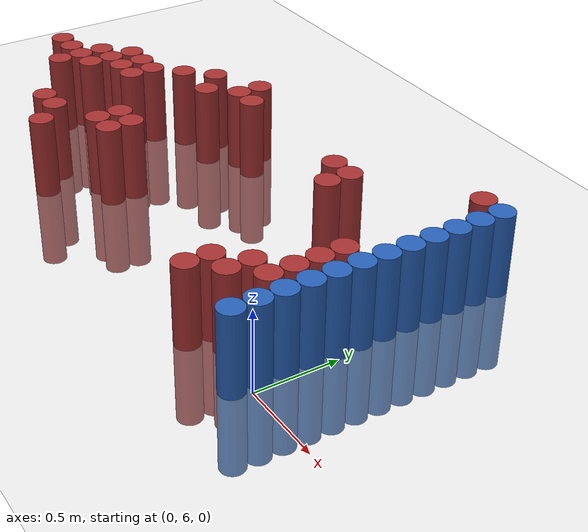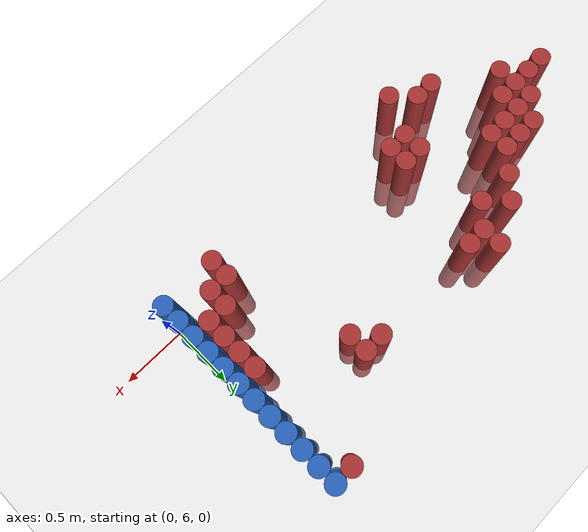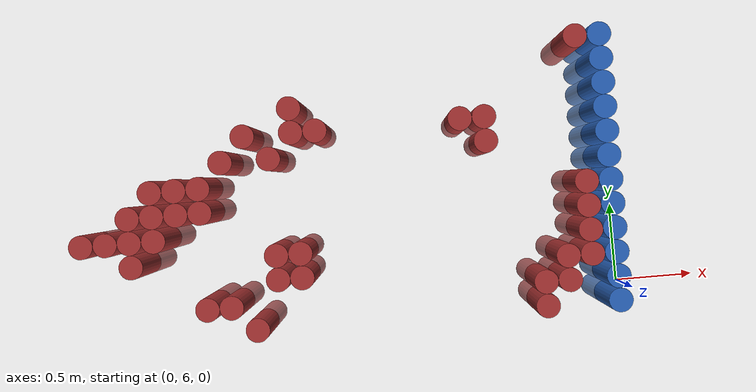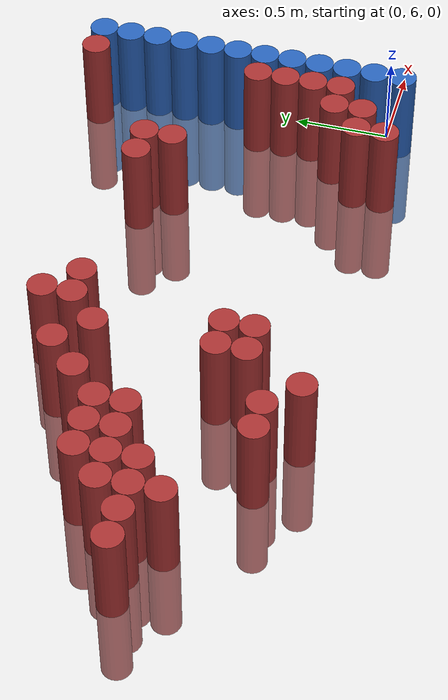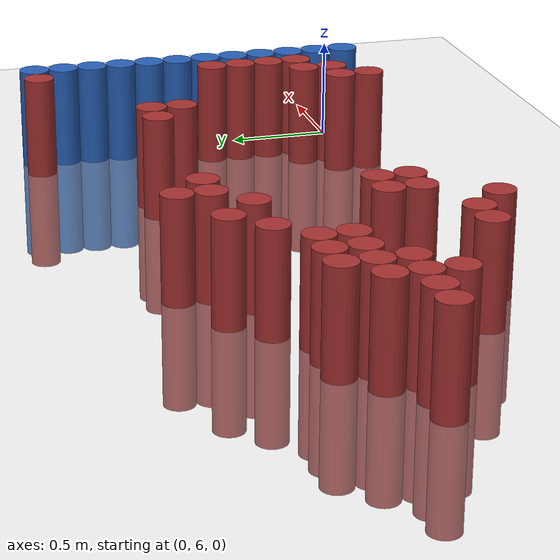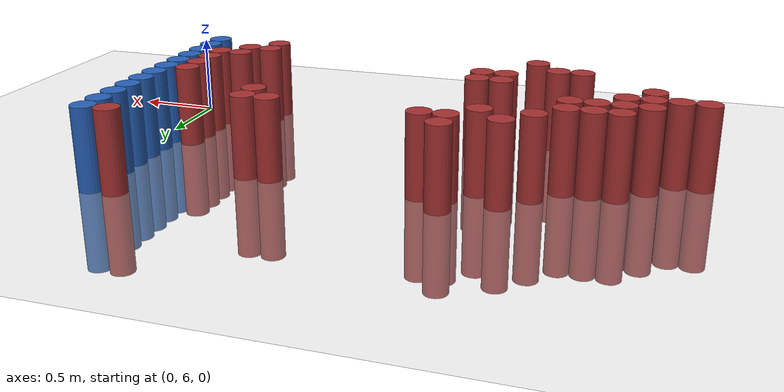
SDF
<sdf version="1.6">
 <world name="default">
  <model name="ground_plane">
   <static>1</static>
   <link name="link">
    <collision name="collision">
     <geometry><plane><normal>0 0 1</normal><size>100 100</size></plane></geometry>
     <surface><friction><ode><mu>100</mu><mu2>50</mu2></ode></friction></surface>
    </collision>
    <visual name="visual">
     <cast_shadows>0</cast_shadows>
     <geometry><plane><normal>0 0 1</normal><size>100 100</size></plane></geometry>
     <material>
      <script><uri>file://media/materials/scripts/gazebo.material</uri><name>Gazebo/Grey</name></script>
     </material>
    </visual>
   </link>
  </model>
  <model name="unit_cylinder_171">
   <static>1</static>
   <pose>-3.375000 6.525000 0.000000 0.000000 0.000000 0.000000</pose>
   <link name="link">
    <inertial>
     <mass>1</mass>
     <inertia><ixx>0.145833</ixx><ixy>0</ixy><ixz>0</ixz><iyy>0.145833</iyy><iyz>0</iyz><izz>0.125</izz></inertia>
    </inertial>
    <collision name="collision">
     <geometry><cylinder><radius>0.075000</radius><length>1</length></cylinder></geometry>
    </collision>
    <visual name="visual">
     <geometry><cylinder><radius>0.075000</radius><length>1</length></cylinder></geometry>
     <material>
      <ambient>0.648000 0.192000 0.192000 1</ambient>
      <diffuse>0.648000 0.192000 0.192000 1</diffuse>
     </material>
     <material>
      <script><name>Gazebo/Grey</name><uri>file://media/materials/scripts/gazebo.material</uri></script>
     </material>
    </visual>
   </link>
  </model>
  <model name="unit_cylinder_179">
   <static>1</static>
   <pose>-3.225000 6.525000 0.000000 0.000000 0.000000 0.000000</pose>
   <link name="link">
    <inertial>
     <mass>1</mass>
     <inertia><ixx>0.145833</ixx><ixy>0</ixy><ixz>0</ixz><iyy>0.145833</iyy><iyz>0</iyz><izz>0.125</izz></inertia>
    </inertial>
    <collision name="collision">
     <geometry><cylinder><radius>0.075000</radius><length>1</length></cylinder></geometry>
    </collision>
    <visual name="visual">
     <geometry><cylinder><radius>0.075000</radius><length>1</length></cylinder></geometry>
     <material>
      <ambient>0.648000 0.192000 0.192000 1</ambient>
      <diffuse>0.648000 0.192000 0.192000 1</diffuse>
     </material>
     <material>
      <script><name>Gazebo/Grey</name><uri>file://media/materials/scripts/gazebo.material</uri></script>
     </material>
    </visual>
   </link>
  </model>
  <model name="unit_cylinder_186">
   <static>1</static>
   <pose>-3.075000 6.375000 0.000000 0.000000 0.000000 0.000000</pose>
   <link name="link">
    <inertial>
     <mass>1</mass>
     <inertia><ixx>0.145833</ixx><ixy>0</ixy><ixz>0</ixz><iyy>0.145833</iyy><iyz>0</iyz><izz>0.125</izz></inertia>
    </inertial>
    <collision name="collision">
     <geometry><cylinder><radius>0.075000</radius><length>1</length></cylinder></geometry>
    </collision>
    <visual name="visual">
     <geometry><cylinder><radius>0.075000</radius><length>1</length></cylinder></geometry>
     <material>
      <ambient>0.648000 0.192000 0.192000 1</ambient>
      <diffuse>0.648000 0.192000 0.192000 1</diffuse>
     </material>
     <material>
      <script><name>Gazebo/Grey</name><uri>file://media/materials/scripts/gazebo.material</uri></script>
     </material>
    </visual>
   </link>
  </model>
  <model name="unit_cylinder_187">
   <static>1</static>
   <pose>-3.075000 6.525000 0.000000 0.000000 0.000000 0.000000</pose>
   <link name="link">
    <inertial>
     <mass>1</mass>
     <inertia><ixx>0.145833</ixx><ixy>0</ixy><ixz>0</ixz><iyy>0.145833</iyy><iyz>0</iyz><izz>0.125</izz></inertia>
    </inertial>
    <collision name="collision">
     <geometry><cylinder><radius>0.075000</radius><length>1</length></cylinder></geometry>
    </collision>
    <visual name="visual">
     <geometry><cylinder><radius>0.075000</radius><length>1</length></cylinder></geometry>
     <material>
      <ambient>0.648000 0.192000 0.192000 1</ambient>
      <diffuse>0.648000 0.192000 0.192000 1</diffuse>
     </material>
     <material>
      <script><name>Gazebo/Grey</name><uri>file://media/materials/scripts/gazebo.material</uri></script>
     </material>
    </visual>
   </link>
  </model>
  <model name="unit_cylinder_188">
   <static>1</static>
   <pose>-3.075000 6.675000 0.000000 0.000000 0.000000 0.000000</pose>
   <link name="link">
    <inertial>
     <mass>1</mass>
     <inertia><ixx>0.145833</ixx><ixy>0</ixy><ixz>0</ixz><iyy>0.145833</iyy><iyz>0</iyz><izz>0.125</izz></inertia>
    </inertial>
    <collision name="collision">
     <geometry><cylinder><radius>0.075000</radius><length>1</length></cylinder></geometry>
    </collision>
    <visual name="visual">
     <geometry><cylinder><radius>0.075000</radius><length>1</length></cylinder></geometry>
     <material>
      <ambient>0.648000 0.192000 0.192000 1</ambient>
      <diffuse>0.648000 0.192000 0.192000 1</diffuse>
     </material>
     <material>
      <script><name>Gazebo/Grey</name><uri>file://media/materials/scripts/gazebo.material</uri></script>
     </material>
    </visual>
   </link>
  </model>
  <model name="unit_cylinder_193">
   <static>1</static>
   <pose>-2.925000 6.525000 0.000000 0.000000 0.000000 0.000000</pose>
   <link name="link">
    <inertial>
     <mass>1</mass>
     <inertia><ixx>0.145833</ixx><ixy>0</ixy><ixz>0</ixz><iyy>0.145833</iyy><iyz>0</iyz><izz>0.125</izz></inertia>
    </inertial>
    <collision name="collision">
     <geometry><cylinder><radius>0.075000</radius><length>1</length></cylinder></geometry>
    </collision>
    <visual name="visual">
     <geometry><cylinder><radius>0.075000</radius><length>1</length></cylinder></geometry>
     <material>
      <ambient>0.648000 0.192000 0.192000 1</ambient>
      <diffuse>0.648000 0.192000 0.192000 1</diffuse>
     </material>
     <material>
      <script><name>Gazebo/Grey</name><uri>file://media/materials/scripts/gazebo.material</uri></script>
     </material>
    </visual>
   </link>
  </model>
  <model name="unit_cylinder_194">
   <static>1</static>
   <pose>-2.925000 6.675000 0.000000 0.000000 0.000000 0.000000</pose>
   <link name="link">
    <inertial>
     <mass>1</mass>
     <inertia><ixx>0.145833</ixx><ixy>0</ixy><ixz>0</ixz><iyy>0.145833</iyy><iyz>0</iyz><izz>0.125</izz></inertia>
    </inertial>
    <collision name="collision">
     <geometry><cylinder><radius>0.075000</radius><length>1</length></cylinder></geometry>
    </collision>
    <visual name="visual">
     <geometry><cylinder><radius>0.075000</radius><length>1</length></cylinder></geometry>
     <material>
      <ambient>0.648000 0.192000 0.192000 1</ambient>
      <diffuse>0.648000 0.192000 0.192000 1</diffuse>
     </material>
     <material>
      <script><name>Gazebo/Grey</name><uri>file://media/materials/scripts/gazebo.material</uri></script>
     </material>
    </visual>
   </link>
  </model>
  <model name="unit_cylinder_195">
   <static>1</static>
   <pose>-2.925000 6.825000 0.000000 0.000000 0.000000 0.000000</pose>
   <link name="link">
    <inertial>
     <mass>1</mass>
     <inertia><ixx>0.145833</ixx><ixy>0</ixy><ixz>0</ixz><iyy>0.145833</iyy><iyz>0</iyz><izz>0.125</izz></inertia>
    </inertial>
    <collision name="collision">
     <geometry><cylinder><radius>0.075000</radius><length>1</length></cylinder></geometry>
    </collision>
    <visual name="visual">
     <geometry><cylinder><radius>0.075000</radius><length>1</length></cylinder></geometry>
     <material>
      <ambient>0.648000 0.192000 0.192000 1</ambient>
      <diffuse>0.648000 0.192000 0.192000 1</diffuse>
     </material>
     <material>
      <script><name>Gazebo/Grey</name><uri>file://media/materials/scripts/gazebo.material</uri></script>
     </material>
    </visual>
   </link>
  </model>
  <model name="unit_cylinder_200">
   <static>1</static>
   <pose>-2.775000 6.675000 0.000000 0.000000 0.000000 0.000000</pose>
   <link name="link">
    <inertial>
     <mass>1</mass>
     <inertia><ixx>0.145833</ixx><ixy>0</ixy><ixz>0</ixz><iyy>0.145833</iyy><iyz>0</iyz><izz>0.125</izz></inertia>
    </inertial>
    <collision name="collision">
     <geometry><cylinder><radius>0.075000</radius><length>1</length></cylinder></geometry>
    </collision>
    <visual name="visual">
     <geometry><cylinder><radius>0.075000</radius><length>1</length></cylinder></geometry>
     <material>
      <ambient>0.648000 0.192000 0.192000 1</ambient>
      <diffuse>0.648000 0.192000 0.192000 1</diffuse>
     </material>
     <material>
      <script><name>Gazebo/Grey</name><uri>file://media/materials/scripts/gazebo.material</uri></script>
     </material>
    </visual>
   </link>
  </model>
  <model name="unit_cylinder_201">
   <static>1</static>
   <pose>-2.775000 6.825000 0.000000 0.000000 0.000000 0.000000</pose>
   <link name="link">
    <inertial>
     <mass>1</mass>
     <inertia><ixx>0.145833</ixx><ixy>0</ixy><ixz>0</ixz><iyy>0.145833</iyy><iyz>0</iyz><izz>0.125</izz></inertia>
    </inertial>
    <collision name="collision">
     <geometry><cylinder><radius>0.075000</radius><length>1</length></cylinder></geometry>
    </collision>
    <visual name="visual">
     <geometry><cylinder><radius>0.075000</radius><length>1</length></cylinder></geometry>
     <material>
      <ambient>0.648000 0.192000 0.192000 1</ambient>
      <diffuse>0.648000 0.192000 0.192000 1</diffuse>
     </material>
     <material>
      <script><name>Gazebo/Grey</name><uri>file://media/materials/scripts/gazebo.material</uri></script>
     </material>
    </visual>
   </link>
  </model>
  <model name="unit_cylinder_206">
   <static>1</static>
   <pose>-2.625000 6.075000 0.000000 0.000000 0.000000 0.000000</pose>
   <link name="link">
    <inertial>
     <mass>1</mass>
     <inertia><ixx>0.145833</ixx><ixy>0</ixy><ixz>0</ixz><iyy>0.145833</iyy><iyz>0</iyz><izz>0.125</izz></inertia>
    </inertial>
    <collision name="collision">
     <geometry><cylinder><radius>0.075000</radius><length>1</length></cylinder></geometry>
    </collision>
    <visual name="visual">
     <geometry><cylinder><radius>0.075000</radius><length>1</length></cylinder></geometry>
     <material>
      <ambient>0.648000 0.192000 0.192000 1</ambient>
      <diffuse>0.648000 0.192000 0.192000 1</diffuse>
     </material>
     <material>
      <script><name>Gazebo/Grey</name><uri>file://media/materials/scripts/gazebo.material</uri></script>
     </material>
    </visual>
   </link>
  </model>
  <model name="unit_cylinder_207">
   <static>1</static>
   <pose>-2.625000 6.675000 0.000000 0.000000 0.000000 0.000000</pose>
   <link name="link">
    <inertial>
     <mass>1</mass>
     <inertia><ixx>0.145833</ixx><ixy>0</ixy><ixz>0</ixz><iyy>0.145833</iyy><iyz>0</iyz><izz>0.125</izz></inertia>
    </inertial>
    <collision name="collision">
     <geometry><cylinder><radius>0.075000</radius><length>1</length></cylinder></geometry>
    </collision>
    <visual name="visual">
     <geometry><cylinder><radius>0.075000</radius><length>1</length></cylinder></geometry>
     <material>
      <ambient>0.648000 0.192000 0.192000 1</ambient>
      <diffuse>0.648000 0.192000 0.192000 1</diffuse>
     </material>
     <material>
      <script><name>Gazebo/Grey</name><uri>file://media/materials/scripts/gazebo.material</uri></script>
     </material>
    </visual>
   </link>
  </model>
  <model name="unit_cylinder_208">
   <static>1</static>
   <pose>-2.625000 6.825000 0.000000 0.000000 0.000000 0.000000</pose>
   <link name="link">
    <inertial>
     <mass>1</mass>
     <inertia><ixx>0.145833</ixx><ixy>0</ixy><ixz>0</ixz><iyy>0.145833</iyy><iyz>0</iyz><izz>0.125</izz></inertia>
    </inertial>
    <collision name="collision">
     <geometry><cylinder><radius>0.075000</radius><length>1</length></cylinder></geometry>
    </collision>
    <visual name="visual">
     <geometry><cylinder><radius>0.075000</radius><length>1</length></cylinder></geometry>
     <material>
      <ambient>0.648000 0.192000 0.192000 1</ambient>
      <diffuse>0.648000 0.192000 0.192000 1</diffuse>
     </material>
     <material>
      <script><name>Gazebo/Grey</name><uri>file://media/materials/scripts/gazebo.material</uri></script>
     </material>
    </visual>
   </link>
  </model>
  <model name="unit_cylinder_215">
   <static>1</static>
   <pose>-2.475000 6.075000 0.000000 0.000000 0.000000 0.000000</pose>
   <link name="link">
    <inertial>
     <mass>1</mass>
     <inertia><ixx>0.145833</ixx><ixy>0</ixy><ixz>0</ixz><iyy>0.145833</iyy><iyz>0</iyz><izz>0.125</izz></inertia>
    </inertial>
    <collision name="collision">
     <geometry><cylinder><radius>0.075000</radius><length>1</length></cylinder></geometry>
    </collision>
    <visual name="visual">
     <geometry><cylinder><radius>0.075000</radius><length>1</length></cylinder></geometry>
     <material>
      <ambient>0.648000 0.192000 0.192000 1</ambient>
      <diffuse>0.648000 0.192000 0.192000 1</diffuse>
     </material>
     <material>
      <script><name>Gazebo/Grey</name><uri>file://media/materials/scripts/gazebo.material</uri></script>
     </material>
    </visual>
   </link>
  </model>
  <model name="unit_cylinder_216">
   <static>1</static>
   <pose>-2.475000 6.975000 0.000000 0.000000 0.000000 0.000000</pose>
   <link name="link">
    <inertial>
     <mass>1</mass>
     <inertia><ixx>0.145833</ixx><ixy>0</ixy><ixz>0</ixz><iyy>0.145833</iyy><iyz>0</iyz><izz>0.125</izz></inertia>
    </inertial>
    <collision name="collision">
     <geometry><cylinder><radius>0.075000</radius><length>1</length></cylinder></geometry>
    </collision>
    <visual name="visual">
     <geometry><cylinder><radius>0.075000</radius><length>1</length></cylinder></geometry>
     <material>
      <ambient>0.648000 0.192000 0.192000 1</ambient>
      <diffuse>0.648000 0.192000 0.192000 1</diffuse>
     </material>
     <material>
      <script><name>Gazebo/Grey</name><uri>file://media/materials/scripts/gazebo.material</uri></script>
     </material>
    </visual>
   </link>
  </model>
  <model name="unit_cylinder_227">
   <static>1</static>
   <pose>-2.325000 5.925000 0.000000 0.000000 0.000000 0.000000</pose>
   <link name="link">
    <inertial>
     <mass>1</mass>
     <inertia><ixx>0.145833</ixx><ixy>0</ixy><ixz>0</ixz><iyy>0.145833</iyy><iyz>0</iyz><izz>0.125</izz></inertia>
    </inertial>
    <collision name="collision">
     <geometry><cylinder><radius>0.075000</radius><length>1</length></cylinder></geometry>
    </collision>
    <visual name="visual">
     <geometry><cylinder><radius>0.075000</radius><length>1</length></cylinder></geometry>
     <material>
      <ambient>0.648000 0.192000 0.192000 1</ambient>
      <diffuse>0.648000 0.192000 0.192000 1</diffuse>
     </material>
     <material>
      <script><name>Gazebo/Grey</name><uri>file://media/materials/scripts/gazebo.material</uri></script>
     </material>
    </visual>
   </link>
  </model>
  <model name="unit_cylinder_228">
   <static>1</static>
   <pose>-2.325000 7.125000 0.000000 0.000000 0.000000 0.000000</pose>
   <link name="link">
    <inertial>
     <mass>1</mass>
     <inertia><ixx>0.145833</ixx><ixy>0</ixy><ixz>0</ixz><iyy>0.145833</iyy><iyz>0</iyz><izz>0.125</izz></inertia>
    </inertial>
    <collision name="collision">
     <geometry><cylinder><radius>0.075000</radius><length>1</length></cylinder></geometry>
    </collision>
    <visual name="visual">
     <geometry><cylinder><radius>0.075000</radius><length>1</length></cylinder></geometry>
     <material>
      <ambient>0.648000 0.192000 0.192000 1</ambient>
      <diffuse>0.648000 0.192000 0.192000 1</diffuse>
     </material>
     <material>
      <script><name>Gazebo/Grey</name><uri>file://media/materials/scripts/gazebo.material</uri></script>
     </material>
    </visual>
   </link>
  </model>
  <model name="unit_cylinder_236">
   <static>1</static>
   <pose>-2.175000 6.225000 0.000000 0.000000 0.000000 0.000000</pose>
   <link name="link">
    <inertial>
     <mass>1</mass>
     <inertia><ixx>0.145833</ixx><ixy>0</ixy><ixz>0</ixz><iyy>0.145833</iyy><iyz>0</iyz><izz>0.125</izz></inertia>
    </inertial>
    <collision name="collision">
     <geometry><cylinder><radius>0.075000</radius><length>1</length></cylinder></geometry>
    </collision>
    <visual name="visual">
     <geometry><cylinder><radius>0.075000</radius><length>1</length></cylinder></geometry>
     <material>
      <ambient>0.648000 0.192000 0.192000 1</ambient>
      <diffuse>0.648000 0.192000 0.192000 1</diffuse>
     </material>
     <material>
      <script><name>Gazebo/Grey</name><uri>file://media/materials/scripts/gazebo.material</uri></script>
     </material>
    </visual>
   </link>
  </model>
  <model name="unit_cylinder_237">
   <static>1</static>
   <pose>-2.175000 6.375000 0.000000 0.000000 0.000000 0.000000</pose>
   <link name="link">
    <inertial>
     <mass>1</mass>
     <inertia><ixx>0.145833</ixx><ixy>0</ixy><ixz>0</ixz><iyy>0.145833</iyy><iyz>0</iyz><izz>0.125</izz></inertia>
    </inertial>
    <collision name="collision">
     <geometry><cylinder><radius>0.075000</radius><length>1</length></cylinder></geometry>
    </collision>
    <visual name="visual">
     <geometry><cylinder><radius>0.075000</radius><length>1</length></cylinder></geometry>
     <material>
      <ambient>0.648000 0.192000 0.192000 1</ambient>
      <diffuse>0.648000 0.192000 0.192000 1</diffuse>
     </material>
     <material>
      <script><name>Gazebo/Grey</name><uri>file://media/materials/scripts/gazebo.material</uri></script>
     </material>
    </visual>
   </link>
  </model>
  <model name="unit_cylinder_238">
   <static>1</static>
   <pose>-2.175000 6.975000 0.000000 0.000000 0.000000 0.000000</pose>
   <link name="link">
    <inertial>
     <mass>1</mass>
     <inertia><ixx>0.145833</ixx><ixy>0</ixy><ixz>0</ixz><iyy>0.145833</iyy><iyz>0</iyz><izz>0.125</izz></inertia>
    </inertial>
    <collision name="collision">
     <geometry><cylinder><radius>0.075000</radius><length>1</length></cylinder></geometry>
    </collision>
    <visual name="visual">
     <geometry><cylinder><radius>0.075000</radius><length>1</length></cylinder></geometry>
     <material>
      <ambient>0.648000 0.192000 0.192000 1</ambient>
      <diffuse>0.648000 0.192000 0.192000 1</diffuse>
     </material>
     <material>
      <script><name>Gazebo/Grey</name><uri>file://media/materials/scripts/gazebo.material</uri></script>
     </material>
    </visual>
   </link>
  </model>
  <model name="unit_cylinder_241">
   <static>1</static>
   <pose>-2.025000 6.225000 0.000000 0.000000 0.000000 0.000000</pose>
   <link name="link">
    <inertial>
     <mass>1</mass>
     <inertia><ixx>0.145833</ixx><ixy>0</ixy><ixz>0</ixz><iyy>0.145833</iyy><iyz>0</iyz><izz>0.125</izz></inertia>
    </inertial>
    <collision name="collision">
     <geometry><cylinder><radius>0.075000</radius><length>1</length></cylinder></geometry>
    </collision>
    <visual name="visual">
     <geometry><cylinder><radius>0.075000</radius><length>1</length></cylinder></geometry>
     <material>
      <ambient>0.648000 0.192000 0.192000 1</ambient>
      <diffuse>0.648000 0.192000 0.192000 1</diffuse>
     </material>
     <material>
      <script><name>Gazebo/Grey</name><uri>file://media/materials/scripts/gazebo.material</uri></script>
     </material>
    </visual>
   </link>
  </model>
  <model name="unit_cylinder_242">
   <static>1</static>
   <pose>-2.025000 6.375000 0.000000 0.000000 0.000000 0.000000</pose>
   <link name="link">
    <inertial>
     <mass>1</mass>
     <inertia><ixx>0.145833</ixx><ixy>0</ixy><ixz>0</ixz><iyy>0.145833</iyy><iyz>0</iyz><izz>0.125</izz></inertia>
    </inertial>
    <collision name="collision">
     <geometry><cylinder><radius>0.075000</radius><length>1</length></cylinder></geometry>
    </collision>
    <visual name="visual">
     <geometry><cylinder><radius>0.075000</radius><length>1</length></cylinder></geometry>
     <material>
      <ambient>0.648000 0.192000 0.192000 1</ambient>
      <diffuse>0.648000 0.192000 0.192000 1</diffuse>
     </material>
     <material>
      <script><name>Gazebo/Grey</name><uri>file://media/materials/scripts/gazebo.material</uri></script>
     </material>
    </visual>
   </link>
  </model>
  <model name="unit_cylinder_243">
   <static>1</static>
   <pose>-2.025000 7.125000 0.000000 0.000000 0.000000 0.000000</pose>
   <link name="link">
    <inertial>
     <mass>1</mass>
     <inertia><ixx>0.145833</ixx><ixy>0</ixy><ixz>0</ixz><iyy>0.145833</iyy><iyz>0</iyz><izz>0.125</izz></inertia>
    </inertial>
    <collision name="collision">
     <geometry><cylinder><radius>0.075000</radius><length>1</length></cylinder></geometry>
    </collision>
    <visual name="visual">
     <geometry><cylinder><radius>0.075000</radius><length>1</length></cylinder></geometry>
     <material>
      <ambient>0.648000 0.192000 0.192000 1</ambient>
      <diffuse>0.648000 0.192000 0.192000 1</diffuse>
     </material>
     <material>
      <script><name>Gazebo/Grey</name><uri>file://media/materials/scripts/gazebo.material</uri></script>
     </material>
    </visual>
   </link>
  </model>
  <model name="unit_cylinder_244">
   <static>1</static>
   <pose>-2.025000 7.275000 0.000000 0.000000 0.000000 0.000000</pose>
   <link name="link">
    <inertial>
     <mass>1</mass>
     <inertia><ixx>0.145833</ixx><ixy>0</ixy><ixz>0</ixz><iyy>0.145833</iyy><iyz>0</iyz><izz>0.125</izz></inertia>
    </inertial>
    <collision name="collision">
     <geometry><cylinder><radius>0.075000</radius><length>1</length></cylinder></geometry>
    </collision>
    <visual name="visual">
     <geometry><cylinder><radius>0.075000</radius><length>1</length></cylinder></geometry>
     <material>
      <ambient>0.648000 0.192000 0.192000 1</ambient>
      <diffuse>0.648000 0.192000 0.192000 1</diffuse>
     </material>
     <material>
      <script><name>Gazebo/Grey</name><uri>file://media/materials/scripts/gazebo.material</uri></script>
     </material>
    </visual>
   </link>
  </model>
  <model name="unit_cylinder_246">
   <static>1</static>
   <pose>-1.875000 7.125000 0.000000 0.000000 0.000000 0.000000</pose>
   <link name="link">
    <inertial>
     <mass>1</mass>
     <inertia><ixx>0.145833</ixx><ixy>0</ixy><ixz>0</ixz><iyy>0.145833</iyy><iyz>0</iyz><izz>0.125</izz></inertia>
    </inertial>
    <collision name="collision">
     <geometry><cylinder><radius>0.075000</radius><length>1</length></cylinder></geometry>
    </collision>
    <visual name="visual">
     <geometry><cylinder><radius>0.075000</radius><length>1</length></cylinder></geometry>
     <material>
      <ambient>0.648000 0.192000 0.192000 1</ambient>
      <diffuse>0.648000 0.192000 0.192000 1</diffuse>
     </material>
     <material>
      <script><name>Gazebo/Grey</name><uri>file://media/materials/scripts/gazebo.material</uri></script>
     </material>
    </visual>
   </link>
  </model>
  <model name="unit_cylinder_247">
   <static>1</static>
   <pose>-0.975000 7.125000 0.000000 0.000000 0.000000 0.000000</pose>
   <link name="link">
    <inertial>
     <mass>1</mass>
     <inertia><ixx>0.145833</ixx><ixy>0</ixy><ixz>0</ixz><iyy>0.145833</iyy><iyz>0</iyz><izz>0.125</izz></inertia>
    </inertial>
    <collision name="collision">
     <geometry><cylinder><radius>0.075000</radius><length>1</length></cylinder></geometry>
    </collision>
    <visual name="visual">
     <geometry><cylinder><radius>0.075000</radius><length>1</length></cylinder></geometry>
     <material>
      <ambient>0.648000 0.192000 0.192000 1</ambient>
      <diffuse>0.648000 0.192000 0.192000 1</diffuse>
     </material>
     <material>
      <script><name>Gazebo/Grey</name><uri>file://media/materials/scripts/gazebo.material</uri></script>
     </material>
    </visual>
   </link>
  </model>
  <model name="unit_cylinder_248">
   <static>1</static>
   <pose>-0.825000 6.975000 0.000000 0.000000 0.000000 0.000000</pose>
   <link name="link">
    <inertial>
     <mass>1</mass>
     <inertia><ixx>0.145833</ixx><ixy>0</ixy><ixz>0</ixz><iyy>0.145833</iyy><iyz>0</iyz><izz>0.125</izz></inertia>
    </inertial>
    <collision name="collision">
     <geometry><cylinder><radius>0.075000</radius><length>1</length></cylinder></geometry>
    </collision>
    <visual name="visual">
     <geometry><cylinder><radius>0.075000</radius><length>1</length></cylinder></geometry>
     <material>
      <ambient>0.648000 0.192000 0.192000 1</ambient>
      <diffuse>0.648000 0.192000 0.192000 1</diffuse>
     </material>
     <material>
      <script><name>Gazebo/Grey</name><uri>file://media/materials/scripts/gazebo.material</uri></script>
     </material>
    </visual>
   </link>
  </model>
  <model name="unit_cylinder_249">
   <static>1</static>
   <pose>-0.825000 7.125000 0.000000 0.000000 0.000000 0.000000</pose>
   <link name="link">
    <inertial>
     <mass>1</mass>
     <inertia><ixx>0.145833</ixx><ixy>0</ixy><ixz>0</ixz><iyy>0.145833</iyy><iyz>0</iyz><izz>0.125</izz></inertia>
    </inertial>
    <collision name="collision">
     <geometry><cylinder><radius>0.075000</radius><length>1</length></cylinder></geometry>
    </collision>
    <visual name="visual">
     <geometry><cylinder><radius>0.075000</radius><length>1</length></cylinder></geometry>
     <material>
      <ambient>0.648000 0.192000 0.192000 1</ambient>
      <diffuse>0.648000 0.192000 0.192000 1</diffuse>
     </material>
     <material>
      <script><name>Gazebo/Grey</name><uri>file://media/materials/scripts/gazebo.material</uri></script>
     </material>
    </visual>
   </link>
  </model>
  <model name="unit_cylinder_251">
   <static>1</static>
   <pose>-0.525000 5.925000 0.000000 0.000000 0.000000 0.000000</pose>
   <link name="link">
    <inertial>
     <mass>1</mass>
     <inertia><ixx>0.145833</ixx><ixy>0</ixy><ixz>0</ixz><iyy>0.145833</iyy><iyz>0</iyz><izz>0.125</izz></inertia>
    </inertial>
    <collision name="collision">
     <geometry><cylinder><radius>0.075000</radius><length>1</length></cylinder></geometry>
    </collision>
    <visual name="visual">
     <geometry><cylinder><radius>0.075000</radius><length>1</length></cylinder></geometry>
     <material>
      <ambient>0.648000 0.192000 0.192000 1</ambient>
      <diffuse>0.648000 0.192000 0.192000 1</diffuse>
     </material>
     <material>
      <script><name>Gazebo/Grey</name><uri>file://media/materials/scripts/gazebo.material</uri></script>
     </material>
    </visual>
   </link>
  </model>
  <model name="unit_cylinder_252">
   <static>1</static>
   <pose>-0.525000 6.075000 0.000000 0.000000 0.000000 0.000000</pose>
   <link name="link">
    <inertial>
     <mass>1</mass>
     <inertia><ixx>0.145833</ixx><ixy>0</ixy><ixz>0</ixz><iyy>0.145833</iyy><iyz>0</iyz><izz>0.125</izz></inertia>
    </inertial>
    <collision name="collision">
     <geometry><cylinder><radius>0.075000</radius><length>1</length></cylinder></geometry>
    </collision>
    <visual name="visual">
     <geometry><cylinder><radius>0.075000</radius><length>1</length></cylinder></geometry>
     <material>
      <ambient>0.648000 0.192000 0.192000 1</ambient>
      <diffuse>0.648000 0.192000 0.192000 1</diffuse>
     </material>
     <material>
      <script><name>Gazebo/Grey</name><uri>file://media/materials/scripts/gazebo.material</uri></script>
     </material>
    </visual>
   </link>
  </model>
  <model name="unit_cylinder_254">
   <static>1</static>
   <pose>-0.375000 6.075000 0.000000 0.000000 0.000000 0.000000</pose>
   <link name="link">
    <inertial>
     <mass>1</mass>
     <inertia><ixx>0.145833</ixx><ixy>0</ixy><ixz>0</ixz><iyy>0.145833</iyy><iyz>0</iyz><izz>0.125</izz></inertia>
    </inertial>
    <collision name="collision">
     <geometry><cylinder><radius>0.075000</radius><length>1</length></cylinder></geometry>
    </collision>
    <visual name="visual">
     <geometry><cylinder><radius>0.075000</radius><length>1</length></cylinder></geometry>
     <material>
      <ambient>0.648000 0.192000 0.192000 1</ambient>
      <diffuse>0.648000 0.192000 0.192000 1</diffuse>
     </material>
     <material>
      <script><name>Gazebo/Grey</name><uri>file://media/materials/scripts/gazebo.material</uri></script>
     </material>
    </visual>
   </link>
  </model>
  <model name="unit_cylinder_255">
   <static>1</static>
   <pose>-0.375000 6.225000 0.000000 0.000000 0.000000 0.000000</pose>
   <link name="link">
    <inertial>
     <mass>1</mass>
     <inertia><ixx>0.145833</ixx><ixy>0</ixy><ixz>0</ixz><iyy>0.145833</iyy><iyz>0</iyz><izz>0.125</izz></inertia>
    </inertial>
    <collision name="collision">
     <geometry><cylinder><radius>0.075000</radius><length>1</length></cylinder></geometry>
    </collision>
    <visual name="visual">
     <geometry><cylinder><radius>0.075000</radius><length>1</length></cylinder></geometry>
     <material>
      <ambient>0.648000 0.192000 0.192000 1</ambient>
      <diffuse>0.648000 0.192000 0.192000 1</diffuse>
     </material>
     <material>
      <script><name>Gazebo/Grey</name><uri>file://media/materials/scripts/gazebo.material</uri></script>
     </material>
    </visual>
   </link>
  </model>
  <model name="unit_cylinder_258">
   <static>1</static>
   <pose>-0.225000 6.225000 0.000000 0.000000 0.000000 0.000000</pose>
   <link name="link">
    <inertial>
     <mass>1</mass>
     <inertia><ixx>0.145833</ixx><ixy>0</ixy><ixz>0</ixz><iyy>0.145833</iyy><iyz>0</iyz><izz>0.125</izz></inertia>
    </inertial>
    <collision name="collision">
     <geometry><cylinder><radius>0.075000</radius><length>1</length></cylinder></geometry>
    </collision>
    <visual name="visual">
     <geometry><cylinder><radius>0.075000</radius><length>1</length></cylinder></geometry>
     <material>
      <ambient>0.648000 0.192000 0.192000 1</ambient>
      <diffuse>0.648000 0.192000 0.192000 1</diffuse>
     </material>
     <material>
      <script><name>Gazebo/Grey</name><uri>file://media/materials/scripts/gazebo.material</uri></script>
     </material>
    </visual>
   </link>
  </model>
  <model name="unit_cylinder_259">
   <static>1</static>
   <pose>-0.225000 6.375000 0.000000 0.000000 0.000000 0.000000</pose>
   <link name="link">
    <inertial>
     <mass>1</mass>
     <inertia><ixx>0.145833</ixx><ixy>0</ixy><ixz>0</ixz><iyy>0.145833</iyy><iyz>0</iyz><izz>0.125</izz></inertia>
    </inertial>
    <collision name="collision">
     <geometry><cylinder><radius>0.075000</radius><length>1</length></cylinder></geometry>
    </collision>
    <visual name="visual">
     <geometry><cylinder><radius>0.075000</radius><length>1</length></cylinder></geometry>
     <material>
      <ambient>0.648000 0.192000 0.192000 1</ambient>
      <diffuse>0.648000 0.192000 0.192000 1</diffuse>
     </material>
     <material>
      <script><name>Gazebo/Grey</name><uri>file://media/materials/scripts/gazebo.material</uri></script>
     </material>
    </visual>
   </link>
  </model>
  <model name="unit_cylinder_260">
   <static>1</static>
   <pose>-0.225000 6.525000 0.000000 0.000000 0.000000 0.000000</pose>
   <link name="link">
    <inertial>
     <mass>1</mass>
     <inertia><ixx>0.145833</ixx><ixy>0</ixy><ixz>0</ixz><iyy>0.145833</iyy><iyz>0</iyz><izz>0.125</izz></inertia>
    </inertial>
    <collision name="collision">
     <geometry><cylinder><radius>0.075000</radius><length>1</length></cylinder></geometry>
    </collision>
    <visual name="visual">
     <geometry><cylinder><radius>0.075000</radius><length>1</length></cylinder></geometry>
     <material>
      <ambient>0.648000 0.192000 0.192000 1</ambient>
      <diffuse>0.648000 0.192000 0.192000 1</diffuse>
     </material>
     <material>
      <script><name>Gazebo/Grey</name><uri>file://media/materials/scripts/gazebo.material</uri></script>
     </material>
    </visual>
   </link>
  </model>
  <model name="unit_cylinder_261">
   <static>1</static>
   <pose>-0.225000 6.675000 0.000000 0.000000 0.000000 0.000000</pose>
   <link name="link">
    <inertial>
     <mass>1</mass>
     <inertia><ixx>0.145833</ixx><ixy>0</ixy><ixz>0</ixz><iyy>0.145833</iyy><iyz>0</iyz><izz>0.125</izz></inertia>
    </inertial>
    <collision name="collision">
     <geometry><cylinder><radius>0.075000</radius><length>1</length></cylinder></geometry>
    </collision>
    <visual name="visual">
     <geometry><cylinder><radius>0.075000</radius><length>1</length></cylinder></geometry>
     <material>
      <ambient>0.648000 0.192000 0.192000 1</ambient>
      <diffuse>0.648000 0.192000 0.192000 1</diffuse>
     </material>
     <material>
      <script><name>Gazebo/Grey</name><uri>file://media/materials/scripts/gazebo.material</uri></script>
     </material>
    </visual>
   </link>
  </model>
  <model name="unit_cylinder_262">
   <static>1</static>
   <pose>-0.225000 7.575000 0.000000 0.000000 0.000000 0.000000</pose>
   <link name="link">
    <inertial>
     <mass>1</mass>
     <inertia><ixx>0.145833</ixx><ixy>0</ixy><ixz>0</ixz><iyy>0.145833</iyy><iyz>0</iyz><izz>0.125</izz></inertia>
    </inertial>
    <collision name="collision">
     <geometry><cylinder><radius>0.075000</radius><length>1</length></cylinder></geometry>
    </collision>
    <visual name="visual">
     <geometry><cylinder><radius>0.075000</radius><length>1</length></cylinder></geometry>
     <material>
      <ambient>0.648000 0.192000 0.192000 1</ambient>
      <diffuse>0.648000 0.192000 0.192000 1</diffuse>
     </material>
     <material>
      <script><name>Gazebo/Grey</name><uri>file://media/materials/scripts/gazebo.material</uri></script>
     </material>
    </visual>
   </link>
  </model>
  <model name="unit_cylinder_273">
   <static>1</static>
   <pose>-0.075000 5.925000 0.000000 0.000000 0.000000 0.000000</pose>
   <link name="link">
    <inertial>
     <mass>1</mass>
     <inertia><ixx>0.145833</ixx><ixy>0</ixy><ixz>0</ixz><iyy>0.145833</iyy><iyz>0</iyz><izz>0.125</izz></inertia>
    </inertial>
    <collision name="collision">
     <geometry><cylinder><radius>0.075000</radius><length>1</length></cylinder></geometry>
    </collision>
    <visual name="visual">
     <geometry><cylinder><radius>0.075000</radius><length>1</length></cylinder></geometry>
     <material>
      <ambient>0.152000 0.379000 0.720000 1</ambient>
      <diffuse>0.152000 0.379000 0.720000 1</diffuse>
     </material>
     <material>
      <script><name>Gazebo/Grey</name><uri>file://media/materials/scripts/gazebo.material</uri></script>
     </material>
    </visual>
   </link>
  </model>
  <model name="unit_cylinder_274">
   <static>1</static>
   <pose>-0.075000 6.075000 0.000000 0.000000 0.000000 0.000000</pose>
   <link name="link">
    <inertial>
     <mass>1</mass>
     <inertia><ixx>0.145833</ixx><ixy>0</ixy><ixz>0</ixz><iyy>0.145833</iyy><iyz>0</iyz><izz>0.125</izz></inertia>
    </inertial>
    <collision name="collision">
     <geometry><cylinder><radius>0.075000</radius><length>1</length></cylinder></geometry>
    </collision>
    <visual name="visual">
     <geometry><cylinder><radius>0.075000</radius><length>1</length></cylinder></geometry>
     <material>
      <ambient>0.152000 0.379000 0.720000 1</ambient>
      <diffuse>0.152000 0.379000 0.720000 1</diffuse>
     </material>
     <material>
      <script><name>Gazebo/Grey</name><uri>file://media/materials/scripts/gazebo.material</uri></script>
     </material>
    </visual>
   </link>
  </model>
  <model name="unit_cylinder_275">
   <static>1</static>
   <pose>-0.075000 6.225000 0.000000 0.000000 0.000000 0.000000</pose>
   <link name="link">
    <inertial>
     <mass>1</mass>
     <inertia><ixx>0.145833</ixx><ixy>0</ixy><ixz>0</ixz><iyy>0.145833</iyy><iyz>0</iyz><izz>0.125</izz></inertia>
    </inertial>
    <collision name="collision">
     <geometry><cylinder><radius>0.075000</radius><length>1</length></cylinder></geometry>
    </collision>
    <visual name="visual">
     <geometry><cylinder><radius>0.075000</radius><length>1</length></cylinder></geometry>
     <material>
      <ambient>0.152000 0.379000 0.720000 1</ambient>
      <diffuse>0.152000 0.379000 0.720000 1</diffuse>
     </material>
     <material>
      <script><name>Gazebo/Grey</name><uri>file://media/materials/scripts/gazebo.material</uri></script>
     </material>
    </visual>
   </link>
  </model>
  <model name="unit_cylinder_276">
   <static>1</static>
   <pose>-0.075000 6.375000 0.000000 0.000000 0.000000 0.000000</pose>
   <link name="link">
    <inertial>
     <mass>1</mass>
     <inertia><ixx>0.145833</ixx><ixy>0</ixy><ixz>0</ixz><iyy>0.145833</iyy><iyz>0</iyz><izz>0.125</izz></inertia>
    </inertial>
    <collision name="collision">
     <geometry><cylinder><radius>0.075000</radius><length>1</length></cylinder></geometry>
    </collision>
    <visual name="visual">
     <geometry><cylinder><radius>0.075000</radius><length>1</length></cylinder></geometry>
     <material>
      <ambient>0.152000 0.379000 0.720000 1</ambient>
      <diffuse>0.152000 0.379000 0.720000 1</diffuse>
     </material>
     <material>
      <script><name>Gazebo/Grey</name><uri>file://media/materials/scripts/gazebo.material</uri></script>
     </material>
    </visual>
   </link>
  </model>
  <model name="unit_cylinder_277">
   <static>1</static>
   <pose>-0.075000 6.525000 0.000000 0.000000 0.000000 0.000000</pose>
   <link name="link">
    <inertial>
     <mass>1</mass>
     <inertia><ixx>0.145833</ixx><ixy>0</ixy><ixz>0</ixz><iyy>0.145833</iyy><iyz>0</iyz><izz>0.125</izz></inertia>
    </inertial>
    <collision name="collision">
     <geometry><cylinder><radius>0.075000</radius><length>1</length></cylinder></geometry>
    </collision>
    <visual name="visual">
     <geometry><cylinder><radius>0.075000</radius><length>1</length></cylinder></geometry>
     <material>
      <ambient>0.152000 0.379000 0.720000 1</ambient>
      <diffuse>0.152000 0.379000 0.720000 1</diffuse>
     </material>
     <material>
      <script><name>Gazebo/Grey</name><uri>file://media/materials/scripts/gazebo.material</uri></script>
     </material>
    </visual>
   </link>
  </model>
  <model name="unit_cylinder_278">
   <static>1</static>
   <pose>-0.075000 6.675000 0.000000 0.000000 0.000000 0.000000</pose>
   <link name="link">
    <inertial>
     <mass>1</mass>
     <inertia><ixx>0.145833</ixx><ixy>0</ixy><ixz>0</ixz><iyy>0.145833</iyy><iyz>0</iyz><izz>0.125</izz></inertia>
    </inertial>
    <collision name="collision">
     <geometry><cylinder><radius>0.075000</radius><length>1</length></cylinder></geometry>
    </collision>
    <visual name="visual">
     <geometry><cylinder><radius>0.075000</radius><length>1</length></cylinder></geometry>
     <material>
      <ambient>0.152000 0.379000 0.720000 1</ambient>
      <diffuse>0.152000 0.379000 0.720000 1</diffuse>
     </material>
     <material>
      <script><name>Gazebo/Grey</name><uri>file://media/materials/scripts/gazebo.material</uri></script>
     </material>
    </visual>
   </link>
  </model>
  <model name="unit_cylinder_279">
   <static>1</static>
   <pose>-0.075000 6.825000 0.000000 0.000000 0.000000 0.000000</pose>
   <link name="link">
    <inertial>
     <mass>1</mass>
     <inertia><ixx>0.145833</ixx><ixy>0</ixy><ixz>0</ixz><iyy>0.145833</iyy><iyz>0</iyz><izz>0.125</izz></inertia>
    </inertial>
    <collision name="collision">
     <geometry><cylinder><radius>0.075000</radius><length>1</length></cylinder></geometry>
    </collision>
    <visual name="visual">
     <geometry><cylinder><radius>0.075000</radius><length>1</length></cylinder></geometry>
     <material>
      <ambient>0.152000 0.379000 0.720000 1</ambient>
      <diffuse>0.152000 0.379000 0.720000 1</diffuse>
     </material>
     <material>
      <script><name>Gazebo/Grey</name><uri>file://media/materials/scripts/gazebo.material</uri></script>
     </material>
    </visual>
   </link>
  </model>
  <model name="unit_cylinder_280">
   <static>1</static>
   <pose>-0.075000 6.975000 0.000000 0.000000 0.000000 0.000000</pose>
   <link name="link">
    <inertial>
     <mass>1</mass>
     <inertia><ixx>0.145833</ixx><ixy>0</ixy><ixz>0</ixz><iyy>0.145833</iyy><iyz>0</iyz><izz>0.125</izz></inertia>
    </inertial>
    <collision name="collision">
     <geometry><cylinder><radius>0.075000</radius><length>1</length></cylinder></geometry>
    </collision>
    <visual name="visual">
     <geometry><cylinder><radius>0.075000</radius><length>1</length></cylinder></geometry>
     <material>
      <ambient>0.152000 0.379000 0.720000 1</ambient>
      <diffuse>0.152000 0.379000 0.720000 1</diffuse>
     </material>
     <material>
      <script><name>Gazebo/Grey</name><uri>file://media/materials/scripts/gazebo.material</uri></script>
     </material>
    </visual>
   </link>
  </model>
  <model name="unit_cylinder_281">
   <static>1</static>
   <pose>-0.075000 7.125000 0.000000 0.000000 0.000000 0.000000</pose>
   <link name="link">
    <inertial>
     <mass>1</mass>
     <inertia><ixx>0.145833</ixx><ixy>0</ixy><ixz>0</ixz><iyy>0.145833</iyy><iyz>0</iyz><izz>0.125</izz></inertia>
    </inertial>
    <collision name="collision">
     <geometry><cylinder><radius>0.075000</radius><length>1</length></cylinder></geometry>
    </collision>
    <visual name="visual">
     <geometry><cylinder><radius>0.075000</radius><length>1</length></cylinder></geometry>
     <material>
      <ambient>0.152000 0.379000 0.720000 1</ambient>
      <diffuse>0.152000 0.379000 0.720000 1</diffuse>
     </material>
     <material>
      <script><name>Gazebo/Grey</name><uri>file://media/materials/scripts/gazebo.material</uri></script>
     </material>
    </visual>
   </link>
  </model>
  <model name="unit_cylinder_282">
   <static>1</static>
   <pose>-0.075000 7.275000 0.000000 0.000000 0.000000 0.000000</pose>
   <link name="link">
    <inertial>
     <mass>1</mass>
     <inertia><ixx>0.145833</ixx><ixy>0</ixy><ixz>0</ixz><iyy>0.145833</iyy><iyz>0</iyz><izz>0.125</izz></inertia>
    </inertial>
    <collision name="collision">
     <geometry><cylinder><radius>0.075000</radius><length>1</length></cylinder></geometry>
    </collision>
    <visual name="visual">
     <geometry><cylinder><radius>0.075000</radius><length>1</length></cylinder></geometry>
     <material>
      <ambient>0.152000 0.379000 0.720000 1</ambient>
      <diffuse>0.152000 0.379000 0.720000 1</diffuse>
     </material>
     <material>
      <script><name>Gazebo/Grey</name><uri>file://media/materials/scripts/gazebo.material</uri></script>
     </material>
    </visual>
   </link>
  </model>
  <model name="unit_cylinder_283">
   <static>1</static>
   <pose>-0.075000 7.425000 0.000000 0.000000 0.000000 0.000000</pose>
   <link name="link">
    <inertial>
     <mass>1</mass>
     <inertia><ixx>0.145833</ixx><ixy>0</ixy><ixz>0</ixz><iyy>0.145833</iyy><iyz>0</iyz><izz>0.125</izz></inertia>
    </inertial>
    <collision name="collision">
     <geometry><cylinder><radius>0.075000</radius><length>1</length></cylinder></geometry>
    </collision>
    <visual name="visual">
     <geometry><cylinder><radius>0.075000</radius><length>1</length></cylinder></geometry>
     <material>
      <ambient>0.152000 0.379000 0.720000 1</ambient>
      <diffuse>0.152000 0.379000 0.720000 1</diffuse>
     </material>
     <material>
      <script><name>Gazebo/Grey</name><uri>file://media/materials/scripts/gazebo.material</uri></script>
     </material>
    </visual>
   </link>
  </model>
  <model name="unit_cylinder_284">
   <static>1</static>
   <pose>-0.075000 7.575000 0.000000 0.000000 0.000000 0.000000</pose>
   <link name="link">
    <inertial>
     <mass>1</mass>
     <inertia><ixx>0.145833</ixx><ixy>0</ixy><ixz>0</ixz><iyy>0.145833</iyy><iyz>0</iyz><izz>0.125</izz></inertia>
    </inertial>
    <collision name="collision">
     <geometry><cylinder><radius>0.075000</radius><length>1</length></cylinder></geometry>
    </collision>
    <visual name="visual">
     <geometry><cylinder><radius>0.075000</radius><length>1</length></cylinder></geometry>
     <material>
      <ambient>0.152000 0.379000 0.720000 1</ambient>
      <diffuse>0.152000 0.379000 0.720000 1</diffuse>
     </material>
     <material>
      <script><name>Gazebo/Grey</name><uri>file://media/materials/scripts/gazebo.material</uri></script>
     </material>
    </visual>
   </link>
  </model>
 </world>
</sdf>
